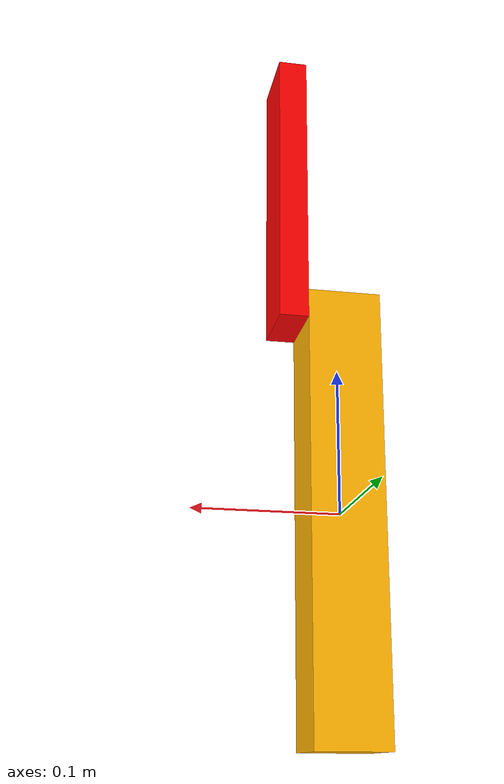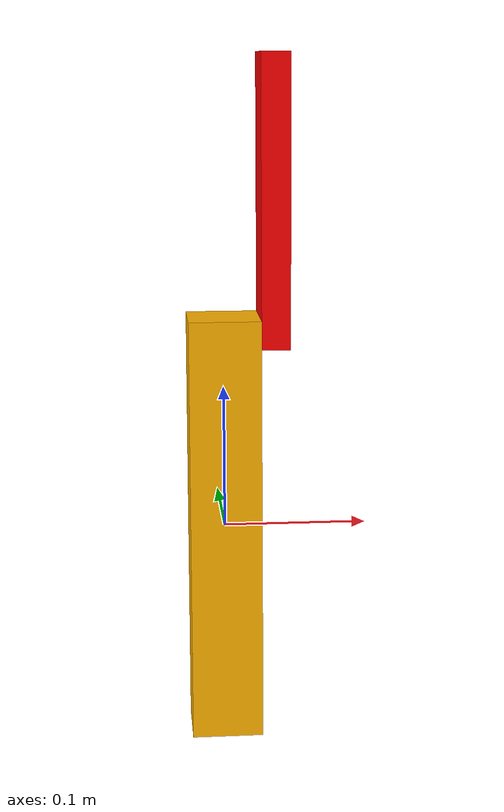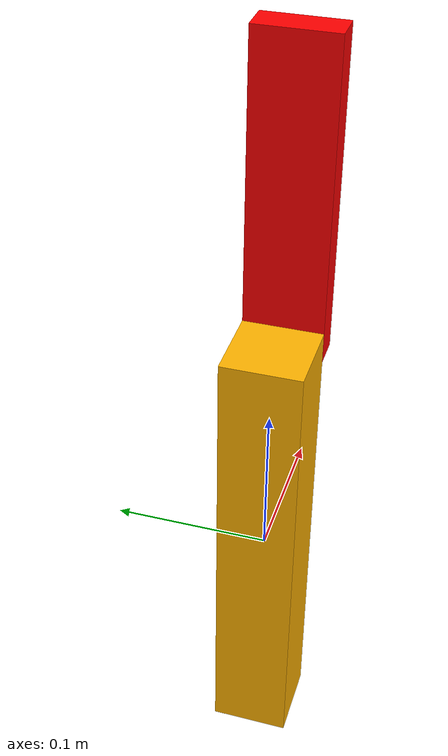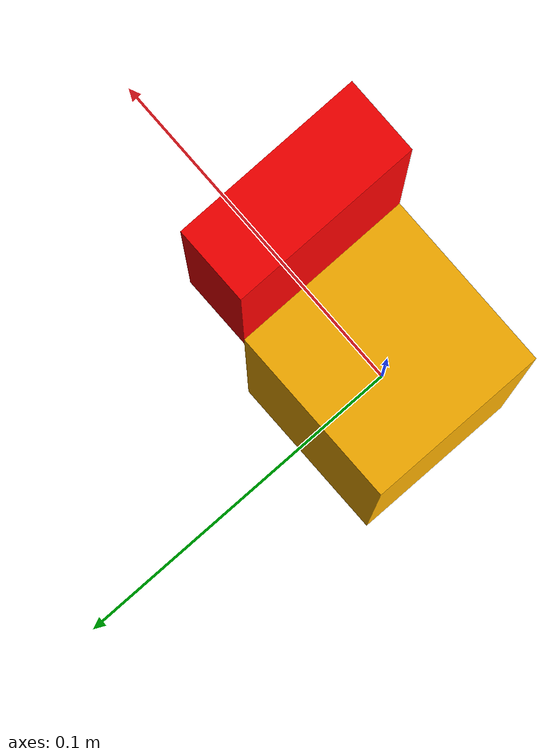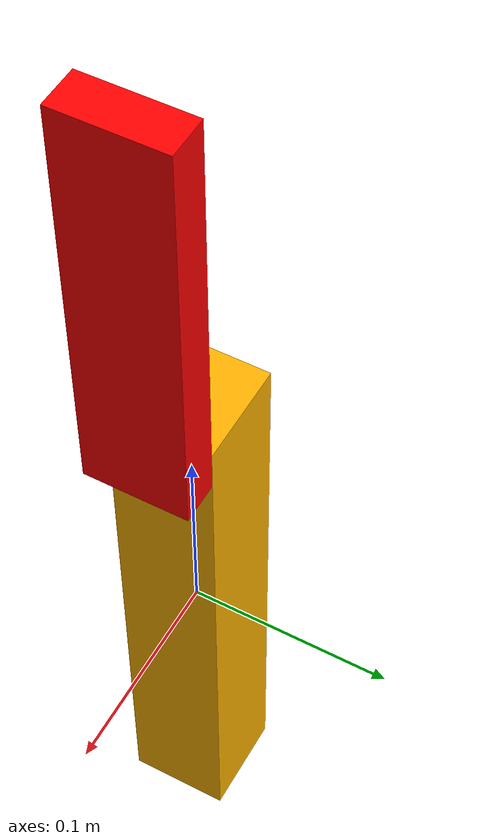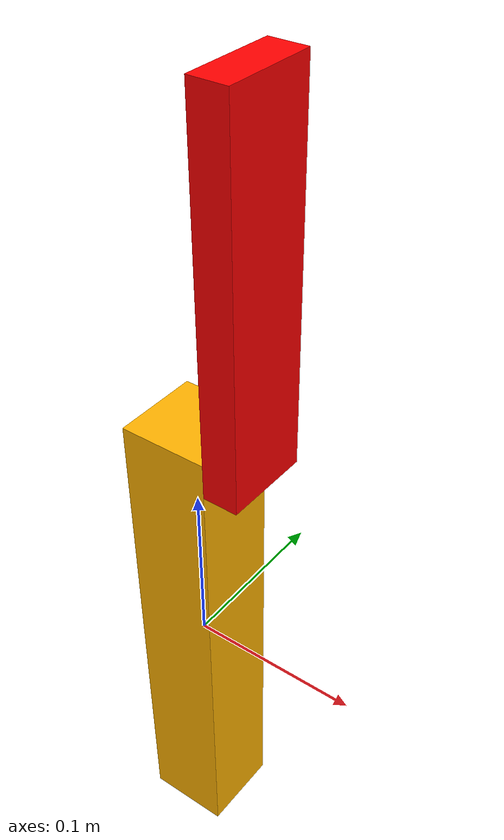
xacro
<?xml version="1.0"?>
<robot name="my_robot">
  <!-- Base link (box) -->
  <link name="base_link">
    <visual>
      <origin xyz="0.0 0.0 0.0" rpy="0.0 0.0 0.0"/>
      <geometry>
        <box size="0.05 0.05 0.3"/>
      </geometry>
      <material name="">
        <color rgba="1.0 0.70 0.0 1.0"/>
        <texture filename=""/>
      </material>
    </visual>
    <collision>
      <origin xyz="0.0 0.0 0.0" rpy="0.0 0.0 0.0"/>
      <geometry>
        <box size="0.05 0.05 0.3"/>
      </geometry>
    </collision>
    <inertial>
      <mass value="1.0"/>
      <origin xyz="0 0 0" rpy="0 0 0"/>
      <inertia ixx="0.0079167" ixy="0" ixz="0" iyy="0.0079167" iyz="0" izz="0.0004167"/>
    </inertial>
  </link>

  <link name="child_link">
    <visual>
      <origin xyz="0.0 0.0 0.08" rpy="0.0 0.0 0.0"/>
      <geometry>
        <box size="0.02 0.05 0.2"/>
      </geometry>
      <material name="">
        <color rgba="1.0 0.0 0.0 1.0"/>
        <texture filename=""/>
      </material>
    </visual>
    <collision>
      <origin xyz="0.0 0.0 0.08" rpy="0.0 0.0 0.0"/>
      <geometry>
        <box size="0.02 0.05 0.2"/>
      </geometry>
    </collision>
    <inertial>
      <mass value="0.02"/>
      <origin xyz="0.0 0.0 0.08" rpy="0 0 0"/>
      <inertia ixx="5.6333e-5" ixy="0" ixz="0" iyy="6.8000e-5" iyz="0" izz="3.3333e-6"/>
    </inertial>
  </link>

  <joint name="revolute_joint" type="revolute">
    <parent link="base_link"/>
    <child link="child_link"/>
    <origin xyz="0.035 0.0 0.15" rpy="0.0 0.0 0.0"/>
    <axis xyz="1 0.0 0.0"/>
    <limit lower="-0.523599" upper="0.523599" effort="0.0" velocity="0.0"/>
  </joint>

</robot>
